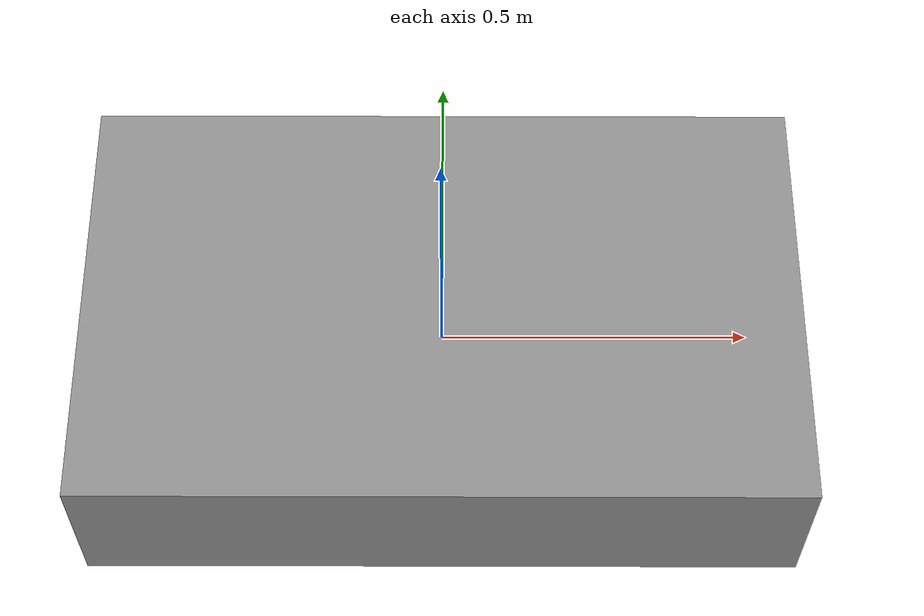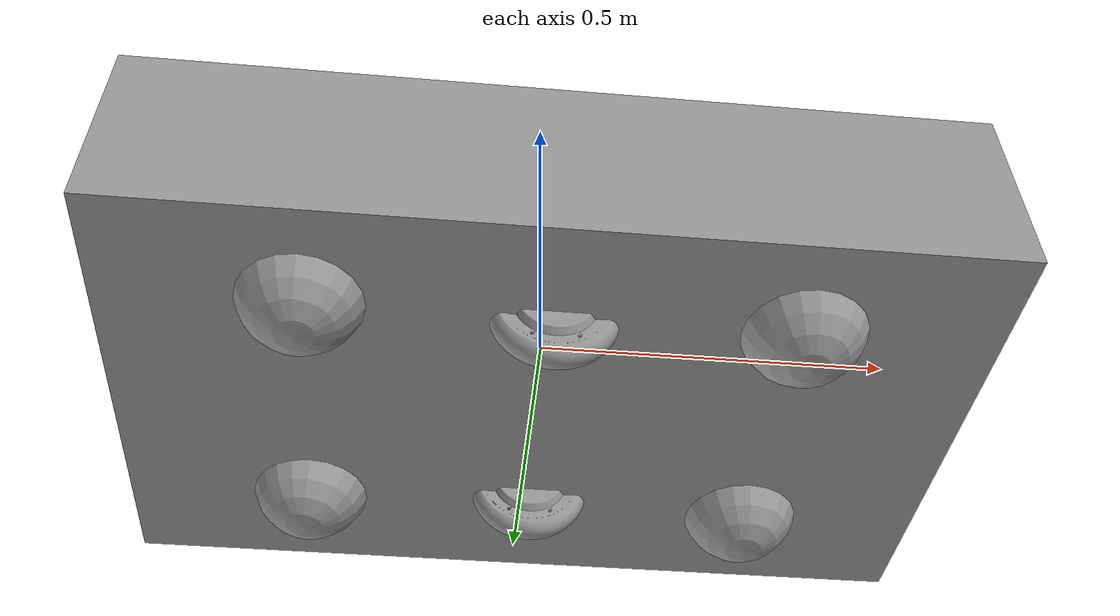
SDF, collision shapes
<?xml version='1.0'?>
<sdf version='1.7'>
  <model name='atpbot'>
    <link name='base_frame'>
      <inertial>
        <mass>40</mass>
        <inertia>
          <ixx>1.87814</ixx>
          <ixy>0</ixy>
          <ixz>0</ixz>
          <iyy>4.65314</iyy>
          <iyz>0</iyz>
          <izz>6.04167</izz>
        </inertia>
        <pose>0 0 0 0 0 0</pose>
      </inertial>
      <pose>0 0 0.0 0 -0 0</pose>
      <gravity>1</gravity>
      <self_collide>0</self_collide>
      <kinematic>0</kinematic>
      <enable_wind>0</enable_wind>
      <visual name='visual'>
        <pose>0 0 0 0 -0 0</pose>
        <geometry>
          <box>
            <size>1.15 0.7 0.271</size>
          </box>
        </geometry>
        <material>
          <lighting>1</lighting>
          <script>
            <uri>file://media/materials/scripts/gazebo.material</uri>
            <name>Gazebo/Grey</name>
          </script>
          <shader type='pixel'>
            <normal_map>__default__</normal_map>
          </shader>
          <ambient>0.3 0.3 0.3 1</ambient>
          <diffuse>0.7 0.7 0.7 1</diffuse>
          <specular>0.01 0.01 0.01 1</specular>
          <emissive>0 0 0 1</emissive>
        </material>
        <transparency>0</transparency>
        <cast_shadows>1</cast_shadows>
      </visual>
      <collision name='collision'>
        <laser_retro>0</laser_retro>
        <max_contacts>10</max_contacts>
        <pose>0 0 0 0 -0 0</pose>
        <geometry>
          <box>
            <size>1.15 0.7 0.271</size>
          </box>
        </geometry>
        <surface>
          <friction>
            <ode>
              <mu>1</mu>
              <mu2>1</mu2>
              <fdir1>0 0 0</fdir1>
              <slip1>0</slip1>
              <slip2>0</slip2>
            </ode>
            <torsional>
              <coefficient>1</coefficient>
              <patch_radius>0</patch_radius>
              <surface_radius>0</surface_radius>
              <use_patch_radius>1</use_patch_radius>
              <ode>
                <slip>0</slip>
              </ode>
            </torsional>
          </friction>
          <bounce>
            <restitution_coefficient>0</restitution_coefficient>
            <threshold>1e+06</threshold>
          </bounce>
          <contact>
            <collide_without_contact>0</collide_without_contact>
            <collide_without_contact_bitmask>1</collide_without_contact_bitmask>
            <collide_bitmask>1</collide_bitmask>
            <ode>
              <soft_cfm>0</soft_cfm>
              <soft_erp>0.2</soft_erp>
              <kp>1e+13</kp>
              <kd>1</kd>
              <max_vel>0.01</max_vel>
              <min_depth>0</min_depth>
            </ode>
            <bullet>
              <split_impulse>1</split_impulse>
              <split_impulse_penetration_threshold>-0.01</split_impulse_penetration_threshold>
              <soft_cfm>0</soft_cfm>
              <soft_erp>0.2</soft_erp>
              <kp>1e+13</kp>
              <kd>1</kd>
            </bullet>
          </contact>
        </surface>
      </collision>
    </link>

       <link name='base_footprint'>
      <self_collide>0</self_collide>
      <inertial>
        <pose>0 0 0 0 0 0</pose>
        <inertia>
          <ixx>1</ixx>
          <ixy>0</ixy>
          <ixz>0</ixz>
          <iyy>1</iyy>
          <iyz>0</iyz>
          <izz>1</izz>
        </inertia>
        <mass>1</mass>
      </inertial>
      <enable_wind>0</enable_wind>
      <kinematic>0</kinematic>
      <pose>0 0 0 0 -0 0</pose>
    </link>

    <link name='back_caster_wheel_left'>
      <inertial>
        <mass>4</mass>
        <inertia>
          <ixx>0.01156</ixx>
          <ixy>0</ixy>
          <ixz>0</ixz>
          <iyy>0.01156</iyy>
          <iyz>0</iyz>
          <izz>0.01156</izz>
        </inertia>
        <pose>0 0 0 0 -0 0</pose>
      </inertial>
      <pose>0.317 -0.199 -0.112 0 -0 0</pose>
      <gravity>1</gravity>
      <self_collide>0</self_collide>
      <kinematic>0</kinematic>
      <enable_wind>0</enable_wind>
      <visual name='visual'>
        <pose>0 0 0 0 -0 0</pose>
        <geometry>
          <sphere>
            <radius>0.085</radius>
          </sphere>
        </geometry>
        <material>
          <lighting>1</lighting>
          <script>
            <uri>file://media/materials/scripts/gazebo.material</uri>
            <name>Gazebo/Grey</name>
          </script>
          <shader type='pixel'>
            <normal_map>__default__</normal_map>
          </shader>
          <ambient>0.3 0.3 0.3 1</ambient>
          <diffuse>0.7 0.7 0.7 1</diffuse>
          <specular>0.01 0.01 0.01 1</specular>
          <emissive>0 0 0 1</emissive>
        </material>
        <transparency>0</transparency>
        <cast_shadows>1</cast_shadows>
      </visual>
      <collision name='collision'>
        <laser_retro>0</laser_retro>
        <max_contacts>10</max_contacts>
        <pose>0 0 0 0 -0 0</pose>
        <geometry>
          <sphere>
            <radius>0.085</radius>
          </sphere>
        </geometry>
        <surface>
          <friction>
            <ode>
              <mu>1</mu>
              <mu2>1</mu2>
              <fdir1>0 0 0</fdir1>
              <slip1>0</slip1>
              <slip2>0</slip2>
            </ode>
            <torsional>
              <coefficient>1</coefficient>
              <patch_radius>0</patch_radius>
              <surface_radius>0</surface_radius>
              <use_patch_radius>1</use_patch_radius>
              <ode>
                <slip>0</slip>
              </ode>
            </torsional>
          </friction>
          <bounce>
            <restitution_coefficient>0</restitution_coefficient>
            <threshold>1e+06</threshold>
          </bounce>
          <contact>
            <collide_without_contact>0</collide_without_contact>
            <collide_without_contact_bitmask>1</collide_without_contact_bitmask>
            <collide_bitmask>1</collide_bitmask>
            <ode>
              <soft_cfm>0</soft_cfm>
              <soft_erp>0.2</soft_erp>
              <kp>1e+13</kp>
              <kd>1</kd>
              <max_vel>0.01</max_vel>
              <min_depth>0</min_depth>
            </ode>
            <bullet>
              <split_impulse>1</split_impulse>
              <split_impulse_penetration_threshold>-0.01</split_impulse_penetration_threshold>
              <soft_cfm>0</soft_cfm>
              <soft_erp>0.2</soft_erp>
              <kp>1e+13</kp>
              <kd>1</kd>
            </bullet>
          </contact>
        </surface>
      </collision>
    </link>
    <link name='back_caster_wheel_right'>
      <inertial>
        <mass>4</mass>
        <inertia>
          <ixx>0.01156</ixx>
          <ixy>0</ixy>
          <ixz>0</ixz>
          <iyy>0.01156</iyy>
          <iyz>0</iyz>
          <izz>0.01156</izz>
        </inertia>
        <pose>0 0 0 0 -0 0</pose>
      </inertial>
      <pose>0.317 0.199 -0.112 0 -0 0</pose>
      <gravity>1</gravity>
      <self_collide>0</self_collide>
      <kinematic>0</kinematic>
      <enable_wind>0</enable_wind>
      <visual name='visual'>
        <pose>0 0 0 0 -0 0</pose>
        <geometry>
          <sphere>
            <radius>0.085</radius>
          </sphere>
        </geometry>
        <material>
          <lighting>1</lighting>
          <script>
            <uri>file://media/materials/scripts/gazebo.material</uri>
            <name>Gazebo/Grey</name>
          </script>
          <shader type='pixel'>
            <normal_map>__default__</normal_map>
          </shader>
          <ambient>0.3 0.3 0.3 1</ambient>
          <diffuse>0.7 0.7 0.7 1</diffuse>
          <specular>0.01 0.01 0.01 1</specular>
          <emissive>0 0 0 1</emissive>
        </material>
        <transparency>0</transparency>
        <cast_shadows>1</cast_shadows>
      </visual>
      <collision name='collision'>
        <laser_retro>0</laser_retro>
        <max_contacts>10</max_contacts>
        <pose>0 0 0 0 -0 0</pose>
        <geometry>
          <sphere>
            <radius>0.085</radius>
          </sphere>
        </geometry>
        <surface>
          <friction>
            <ode>
              <mu>1</mu>
              <mu2>1</mu2>
              <fdir1>0 0 0</fdir1>
              <slip1>0</slip1>
              <slip2>0</slip2>
            </ode>
            <torsional>
              <coefficient>1</coefficient>
              <patch_radius>0</patch_radius>
              <surface_radius>0</surface_radius>
              <use_patch_radius>1</use_patch_radius>
              <ode>
                <slip>0</slip>
              </ode>
            </torsional>
          </friction>
          <bounce>
            <restitution_coefficient>0</restitution_coefficient>
            <threshold>1e+06</threshold>
          </bounce>
          <contact>
            <collide_without_contact>0</collide_without_contact>
            <collide_without_contact_bitmask>1</collide_without_contact_bitmask>
            <collide_bitmask>1</collide_bitmask>
            <ode>
              <soft_cfm>0</soft_cfm>
              <soft_erp>0.2</soft_erp>
              <kp>1e+13</kp>
              <kd>1</kd>
              <max_vel>0.01</max_vel>
              <min_depth>0</min_depth>
            </ode>
            <bullet>
              <split_impulse>1</split_impulse>
              <split_impulse_penetration_threshold>-0.01</split_impulse_penetration_threshold>
              <soft_cfm>0</soft_cfm>
              <soft_erp>0.2</soft_erp>
              <kp>1e+13</kp>
              <kd>1</kd>
            </bullet>
          </contact>
        </surface>
      </collision>
    </link>
    <link name='base_scan'>
      <gravity>1</gravity>
      <self_collide>0</self_collide>
      <kinematic>0</kinematic>
      <enable_wind>0</enable_wind>
      <pose>0.59 -0 -0.1 3.14 -0 3.14</pose>
      <inertial>
        <mass>0.0001</mass>
        <inertia>
          <ixx>0.1</ixx>
          <ixy>0</ixy>
          <ixz>0</ixz>
          <iyy>0.05</iyy>
          <iyz>0</iyz>
          <izz>0.1</izz>
        </inertia>
        <pose>0 0 0 0 -0 0</pose>
      </inertial>
      <sensor name='rp_lidar' type='ray'>
        <pose>0 0 0 3.14 -0 3.14</pose>
        <visualize>1</visualize>
        <update_rate>50</update_rate>
        <ray>
          <scan>
            <horizontal>
              <samples>400</samples>
              <resolution>1</resolution>
            <min_angle>-1.57</min_angle>
              <max_angle>1.57</max_angle>
            </horizontal>
            <vertical>
              <samples>1</samples>
              <min_angle>0</min_angle>
              <max_angle>0</max_angle>
            </vertical>
          </scan>
          <range>
            <min>0.25</min>
            <max>12</max>
            <resolution>0.02</resolution>
          </range>
          <noise>
            <type>gaussian</type>
            <mean>0</mean>
            <stddev>0.01</stddev>
          </noise>
        </ray>
        <plugin name='rp_lidar' filename='libgazebo_ros_ray_sensor.so'>
          <ros>
            <remapping>~/out:=scan</remapping>
          </ros>
          <output_type>sensor_msgs/LaserScan</output_type>
          <frame_name>base_scan</frame_name>
        </plugin>
      </sensor>
      <visual name='laser_visual'>
        <pose>0 0 0 1.5707 0 1.5707</pose>
        <geometry>
          <mesh>
            <uri>meshes/rplidar.dae</uri>
          </mesh>
        </geometry>
                <material>
          <shader type='pixel'>
            <normal_map>__default__</normal_map>
          </shader>
          <script>
            <name>ModelPreview_1::base_scan::lidar_sensor_visual_MATERIAL_</name>
          </script>
          <ambient>0 0 0 1</ambient>
          <diffuse>0 0 0 1</diffuse>
          <specular>0 0 0 1</specular>
          <emissive>0 0 0 1</emissive>
        </material>
        <transparency>0</transparency>
        <cast_shadows>0</cast_shadows>
      </visual>
    </link>
    <link name='front_caster_wheel_left'>
      <inertial>
        <mass>4</mass>
        <inertia>
          <ixx>0.01156</ixx>
          <ixy>0</ixy>
          <ixz>0</ixz>
          <iyy>0.01156</iyy>
          <iyz>0</iyz>
          <izz>0.01156</izz>
        </inertia>
        <pose>0 0 0 0 -0 0</pose>
      </inertial>
      <pose>-0.317 -0.199 -0.112 0 -0 0</pose>
      <gravity>1</gravity>
      <self_collide>0</self_collide>
      <kinematic>0</kinematic>
      <enable_wind>0</enable_wind>
      <visual name='visual'>
        <pose>0 0 0 0 -0 0</pose>
        <geometry>
          <sphere>
            <radius>0.085</radius>
          </sphere>
        </geometry>
        <material>
          <lighting>1</lighting>
          <script>
            <uri>file://media/materials/scripts/gazebo.material</uri>
            <name>Gazebo/Grey</name>
          </script>
          <shader type='pixel'>
            <normal_map>__default__</normal_map>
          </shader>
          <ambient>0.3 0.3 0.3 1</ambient>
          <diffuse>0.7 0.7 0.7 1</diffuse>
          <specular>0.01 0.01 0.01 1</specular>
          <emissive>0 0 0 1</emissive>
        </material>
        <transparency>0</transparency>
        <cast_shadows>1</cast_shadows>
      </visual>
      <collision name='collision'>
        <laser_retro>0</laser_retro>
        <max_contacts>10</max_contacts>
        <pose>0 0 0 0 -0 0</pose>
        <geometry>
          <sphere>
            <radius>0.085</radius>
          </sphere>
        </geometry>
        <surface>
          <friction>
            <ode>
              <mu>1</mu>
              <mu2>1</mu2>
              <fdir1>0 0 0</fdir1>
              <slip1>0</slip1>
              <slip2>0</slip2>
            </ode>
            <torsional>
              <coefficient>1</coefficient>
              <patch_radius>0</patch_radius>
              <surface_radius>0</surface_radius>
              <use_patch_radius>1</use_patch_radius>
              <ode>
                <slip>0</slip>
              </ode>
            </torsional>
          </friction>
          <bounce>
            <restitution_coefficient>0</restitution_coefficient>
            <threshold>1e+06</threshold>
          </bounce>
          <contact>
            <collide_without_contact>0</collide_without_contact>
            <collide_without_contact_bitmask>1</collide_without_contact_bitmask>
            <collide_bitmask>1</collide_bitmask>
            <ode>
              <soft_cfm>0</soft_cfm>
              <soft_erp>0.2</soft_erp>
              <kp>1e+13</kp>
              <kd>1</kd>
              <max_vel>0.01</max_vel>
              <min_depth>0</min_depth>
            </ode>
            <bullet>
              <split_impulse>1</split_impulse>
              <split_impulse_penetration_threshold>-0.01</split_impulse_penetration_threshold>
              <soft_cfm>0</soft_cfm>
              <soft_erp>0.2</soft_erp>
              <kp>1e+13</kp>
              <kd>1</kd>
            </bullet>
          </contact>
        </surface>
      </collision>
    </link>
    <link name='front_caster_wheel_right'>
      <inertial>
        <mass>4</mass>
        <inertia>
          <ixx>0.01156</ixx>
          <ixy>0</ixy>
          <ixz>0</ixz>
          <iyy>0.01156</iyy>
          <iyz>0</iyz>
          <izz>0.01156</izz>
        </inertia>
        <pose>0 0 0 0 -0 0</pose>
      </inertial>
      <pose>-0.317 0.199 -0.112 -0.015961 0.036481 0.033225</pose>
      <gravity>1</gravity>
      <self_collide>0</self_collide>
      <kinematic>0</kinematic>
      <enable_wind>0</enable_wind>
      <visual name='visual'>
        <pose>0 0 0 0 -0 0</pose>
        <geometry>
          <sphere>
            <radius>0.085</radius>
          </sphere>
        </geometry>
        <material>
          <lighting>1</lighting>
          <script>
            <uri>file://media/materials/scripts/gazebo.material</uri>
            <name>Gazebo/Grey</name>
          </script>
          <shader type='pixel'>
            <normal_map>__default__</normal_map>
          </shader>
          <ambient>0.3 0.3 0.3 1</ambient>
          <diffuse>0.7 0.7 0.7 1</diffuse>
          <specular>0.01 0.01 0.01 1</specular>
          <emissive>0 0 0 1</emissive>
        </material>
        <transparency>0</transparency>
        <cast_shadows>1</cast_shadows>
      </visual>
      <collision name='collision'>
        <laser_retro>0</laser_retro>
        <max_contacts>10</max_contacts>
        <pose>0 0 0 0 -0 0</pose>
        <geometry>
          <sphere>
            <radius>0.085</radius>
          </sphere>
        </geometry>
        <surface>
          <friction>
            <ode>
              <mu>1</mu>
              <mu2>1</mu2>
              <fdir1>0 0 0</fdir1>
              <slip1>0</slip1>
              <slip2>0</slip2>
            </ode>
            <torsional>
              <coefficient>1</coefficient>
              <patch_radius>0</patch_radius>
              <surface_radius>0</surface_radius>
              <use_patch_radius>1</use_patch_radius>
              <ode>
                <slip>0</slip>
              </ode>
            </torsional>
          </friction>
          <bounce>
            <restitution_coefficient>0</restitution_coefficient>
            <threshold>1e+06</threshold>
          </bounce>
          <contact>
            <collide_without_contact>0</collide_without_contact>
            <collide_without_contact_bitmask>1</collide_without_contact_bitmask>
            <collide_bitmask>1</collide_bitmask>
            <ode>
              <soft_cfm>0</soft_cfm>
              <soft_erp>0.2</soft_erp>
              <kp>1e+13</kp>
              <kd>1</kd>
              <max_vel>0.01</max_vel>
              <min_depth>0</min_depth>
            </ode>
            <bullet>
              <split_impulse>1</split_impulse>
              <split_impulse_penetration_threshold>-0.01</split_impulse_penetration_threshold>
              <soft_cfm>0</soft_cfm>
              <soft_erp>0.2</soft_erp>
              <kp>1e+13</kp>
              <kd>1</kd>
            </bullet>
          </contact>
        </surface>
      </collision>
    </link>
    <link name='left_motor'>
    <inertial>
        <mass>3</mass>
        <inertia>
          <ixx>0</ixx>
          <ixy>0</ixy>
          <ixz>0</ixz>
          <iyy>0</iyy>
          <iyz>0</iyz>
          <izz>0</izz>
        </inertia>
        <pose>0 0 0 0 -0 0</pose>
      </inertial>
      <pose>-0 0.1846 -0.113 0 -0 3.14</pose>
      <gravity>1</gravity>
      <self_collide>0</self_collide>
      <kinematic>0</kinematic>
      <enable_wind>0</enable_wind>
      <visual name='visual'>
        <pose>0 0 0 0 -0 0</pose>
        <geometry>
          <mesh>
            <uri>meshes/motor_right.dae</uri>
          </mesh>
        </geometry>
        <material>
          <lighting>1</lighting>
          <script>
            <uri>file://media/materials/scripts/gazebo.material</uri>
            <name>Gazebo/Grey</name>
          </script>
          <shader type='pixel'>
            <normal_map>__default__</normal_map>
          </shader>
          <ambient>0.3 0.3 0.3 1</ambient>
          <diffuse>0.7 0.7 0.7 1</diffuse>
          <specular>0.01 0.01 0.01 1</specular>
          <emissive>0 0 0 1</emissive>
        </material>
        <transparency>0</transparency>
        <cast_shadows>1</cast_shadows>
      </visual>
      <collision name='collision'>
        <laser_retro>0</laser_retro>
        <max_contacts>10</max_contacts>
        <pose>0 0 0 0 -0 0</pose>
        <geometry>
          <mesh>
            <uri>meshes/motor_right.dae</uri>
            <scale>1 1 1</scale>
          </mesh>
        </geometry>
        <surface>
          <friction>
            <ode>
              <mu>1</mu>
              <mu2>1</mu2>
              <fdir1>0 0 0</fdir1>
              <slip1>0</slip1>
              <slip2>0</slip2>
            </ode>
            <torsional>
              <coefficient>1</coefficient>
              <patch_radius>0</patch_radius>
              <surface_radius>0</surface_radius>
              <use_patch_radius>1</use_patch_radius>
              <ode>
                <slip>0</slip>
              </ode>
            </torsional>
          </friction>
          <bounce>
            <restitution_coefficient>0</restitution_coefficient>
            <threshold>1e+06</threshold>
          </bounce>
          <contact>
            <collide_without_contact>0</collide_without_contact>
            <collide_without_contact_bitmask>1</collide_without_contact_bitmask>
            <collide_bitmask>1</collide_bitmask>
            <ode>
              <soft_cfm>0</soft_cfm>
              <soft_erp>0.2</soft_erp>
              <kp>1e+13</kp>
              <kd>1</kd>
              <max_vel>0.01</max_vel>
              <min_depth>0</min_depth>
            </ode>
            <bullet>
              <split_impulse>1</split_impulse>
              <split_impulse_penetration_threshold>-0.01</split_impulse_penetration_threshold>
              <soft_cfm>0</soft_cfm>
              <soft_erp>0.2</soft_erp>
              <kp>1e+13</kp>
              <kd>1</kd>
            </bullet>
          </contact>
        </surface>
      </collision>

    </link>
    <link name='right_motor'>
      <inertial>
        <mass>3</mass>
        <inertia>
          <ixx>0</ixx>
          <ixy>0</ixy>
          <ixz>0</ixz>
          <iyy>0</iyy>
          <iyz>0</iyz>
          <izz>0</izz>
        </inertia>
        <pose>0 -0.239 0 0 -0 0</pose>
      </inertial>
      <pose>0 -0.1846 -0.113 0 -0 0</pose>
      <gravity>1</gravity>
      <self_collide>0</self_collide>
      <kinematic>0</kinematic>
      <enable_wind>0</enable_wind>
      <visual name='visual'>
        <pose>0 0 0 0 -0 0</pose>
        <geometry>
          <mesh>
            <uri>meshes/motor_left.dae</uri>
          </mesh>
        </geometry>
        <material>
          <lighting>1</lighting>
          <script>
            <uri>file://media/materials/scripts/gazebo.material</uri>
            <name>Gazebo/Grey</name>
          </script>
          <shader type='pixel'>
            <normal_map>__default__</normal_map>
          </shader>
          <ambient>0.3 0.3 0.3 1</ambient>
          <diffuse>0.7 0.7 0.7 1</diffuse>
          <specular>0.01 0.01 0.01 1</specular>
          <emissive>0 0 0 1</emissive>
        </material>
        <transparency>0</transparency>
        <cast_shadows>1</cast_shadows>
      </visual>
      <collision name='collision'>
        <laser_retro>0</laser_retro>
        <max_contacts>10</max_contacts>
        <pose>0 0 0 0 -0 0</pose>
        <geometry>
          <mesh>
            <uri>meshes/motor_left.dae</uri>
            <scale>1 1 1</scale>
          </mesh>
        </geometry>
        <surface>
          <friction>
            <ode>
              <mu>1</mu>
              <mu2>1</mu2>
              <fdir1>0 0 0</fdir1>
              <slip1>0</slip1>
              <slip2>0</slip2>
            </ode>
            <torsional>
              <coefficient>1</coefficient>
              <patch_radius>0</patch_radius>
              <surface_radius>0</surface_radius>
              <use_patch_radius>1</use_patch_radius>
              <ode>
                <slip>0</slip>
              </ode>
            </torsional>
          </friction>
          <bounce>
            <restitution_coefficient>0</restitution_coefficient>
            <threshold>1e+06</threshold>
          </bounce>
          <contact>
            <collide_without_contact>0</collide_without_contact>
            <collide_without_contact_bitmask>1</collide_without_contact_bitmask>
            <collide_bitmask>1</collide_bitmask>
            <ode>
              <soft_cfm>0</soft_cfm>
              <soft_erp>0.2</soft_erp>
              <kp>1e+13</kp>
              <kd>1</kd>
              <max_vel>0.01</max_vel>
              <min_depth>0</min_depth>
            </ode>
            <bullet>
              <split_impulse>1</split_impulse>
              <split_impulse_penetration_threshold>-0.01</split_impulse_penetration_threshold>
              <soft_cfm>0</soft_cfm>
              <soft_erp>0.2</soft_erp>
              <kp>1e+13</kp>
              <kd>1</kd>
            </bullet>
          </contact>
        </surface>
      </collision>

    </link>
    <joint name='joint_back_caster_left' type='ball'>
      <parent>base_frame</parent>
      <child>back_caster_wheel_left</child>
      <pose>0 0 0 0 -0 0</pose>
      <physics>
        <ode>
          <limit>
            <cfm>0</cfm>
            <erp>0.2</erp>
          </limit>
          <suspension>
            <cfm>0</cfm>
            <erp>0.2</erp>
          </suspension>
        </ode>
      </physics>
    </joint>
    <joint name='joint_back_caster_right' type='ball'>
      <parent>base_frame</parent>
      <child>back_caster_wheel_right</child>
      <pose>0 0 0 0 -0 0</pose>
      <physics>
        <ode>
          <limit>
            <cfm>0</cfm>
            <erp>0.2</erp>
          </limit>
          <suspension>
            <cfm>0</cfm>
            <erp>0.2</erp>
          </suspension>
        </ode>
      </physics>
    </joint>
    <joint name='joint_front_caster_left' type='ball'>
      <parent>base_frame</parent>
      <child>front_caster_wheel_left</child>
      <pose>0 0 0 0 -0 0</pose>
      <physics>
        <ode>
          <limit>
            <cfm>0</cfm>
            <erp>0.2</erp>
          </limit>
          <suspension>
            <cfm>0</cfm>
            <erp>0.2</erp>
          </suspension>
        </ode>
      </physics>
    </joint>
    <joint name='joint_front_caster_right' type='ball'>
      <parent>base_frame</parent>
      <child>front_caster_wheel_right</child>
      <pose>0 0 0 0 -0 0</pose>
      <physics>
        <ode>
          <limit>
            <cfm>0</cfm>
            <erp>0.2</erp>
          </limit>
          <suspension>
            <cfm>0</cfm>
            <erp>0.2</erp>
          </suspension>
        </ode>
      </physics>
    </joint>
    <joint name='laser_joint' type='fixed'>
      <parent>base_frame</parent>
      <child>base_scan</child>
      <pose>0 0 0 0 -0 0</pose>
      <physics>
        <ode>
          <limit>
            <cfm>0</cfm>
            <erp>0.2</erp>
          </limit>
          <suspension>
            <cfm>0</cfm>
            <erp>0.2</erp>
          </suspension>
        </ode>
      </physics>
    </joint>
    <joint name='wheel_left_joint' type='revolute'>
      <parent>base_frame</parent>
      <child>left_motor</child>
      <pose>0 0 0.0 0 -0 0</pose>
      <axis>
        <xyz>0 -1 0</xyz>
        <limit>
          <lower>-1.79769e+308</lower>
          <upper>1.79769e+308</upper>
          <effort>-1</effort>
          <velocity>-1</velocity>
        </limit>
        <dynamics>
          <spring_reference>0</spring_reference>
          <spring_stiffness>0</spring_stiffness>
          <damping>0</damping>
          <friction>0</friction>
        </dynamics>
      </axis>
      <physics>
        <ode>
          <limit>
            <cfm>0</cfm>
            <erp>0.2</erp>
          </limit>
          <suspension>
            <cfm>0</cfm>
            <erp>0.2</erp>
          </suspension>
        </ode>
      </physics>
    </joint>
    <joint name='wheel_right_joint' type='revolute'>
      <parent>base_frame</parent>
      <child>right_motor</child>
      <pose>0 0 0 0 -0 0</pose>
      <axis>
        <xyz>0 1 0</xyz>
        <limit>
          <lower>-1.79769e+308</lower>
          <upper>1.79769e+308</upper>
          <effort>-1</effort>
          <velocity>-1</velocity>
        </limit>
        <dynamics>
          <spring_reference>0</spring_reference>
          <spring_stiffness>0</spring_stiffness>
          <damping>0</damping>
          <friction>0</friction>
        </dynamics>
      </axis>
      <physics>
        <ode>
          <limit>
            <cfm>0</cfm>
            <erp>0.2</erp>
          </limit>
          <suspension>
            <cfm>0</cfm>
            <erp>0.2</erp>
          </suspension>
        </ode>
      </physics>
    </joint>
     <joint name='base_joint' type='fixed'>
      <parent>base_footprint</parent>
      <child>base_frame</child>
      <pose>0 0 -0.155 0 0 0</pose>
      <physics>
        <ode>
          <limit>
            <cfm>0</cfm>
            <erp>0.2</erp>
          </limit>
          <suspension>
            <cfm>0</cfm>
            <erp>0.2</erp>
          </suspension>
        </ode>
      </physics>
    </joint>
        <static>0</static>
    <allow_auto_disable>1</allow_auto_disable>
    <plugin name='atpbot_diff_drive' filename='libgazebo_ros_diff_drive.so'>
      <update_rate>50</update_rate>
      <left_joint>wheel_left_joint</left_joint>
      <right_joint>wheel_right_joint</right_joint>
      <wheel_separation>0.3692</wheel_separation>
      <wheel_diameter>0.17</wheel_diameter>
      <max_wheel_torque>13</max_wheel_torque>
      <max_wheel_acceleration>1.0</max_wheel_acceleration>
      <command_topic>cmd_vel</command_topic>
      <publish_odom>1</publish_odom>
      <publish_odom_tf>1</publish_odom_tf>
      <publish_wheel_tf>1</publish_wheel_tf>
      <odometry_topic>odom</odometry_topic>
      <odometry_frame>odom</odometry_frame>
      <robot_base_frame>base_footprint</robot_base_frame>
    </plugin>
      <plugin name='atp_joint_state' filename='libgazebo_ros_joint_state_publisher.so'>
      <ros>
        <remapping>~/out:=joint_states</remapping>
      </ros>
      <update_rate>30</update_rate>
      <joint_name>wheel_left_joint</joint_name>
      <joint_name>wheel_right_joint</joint_name>
      <joint_name>base_joint</joint_name>
    </plugin>
  </model>
</sdf>
